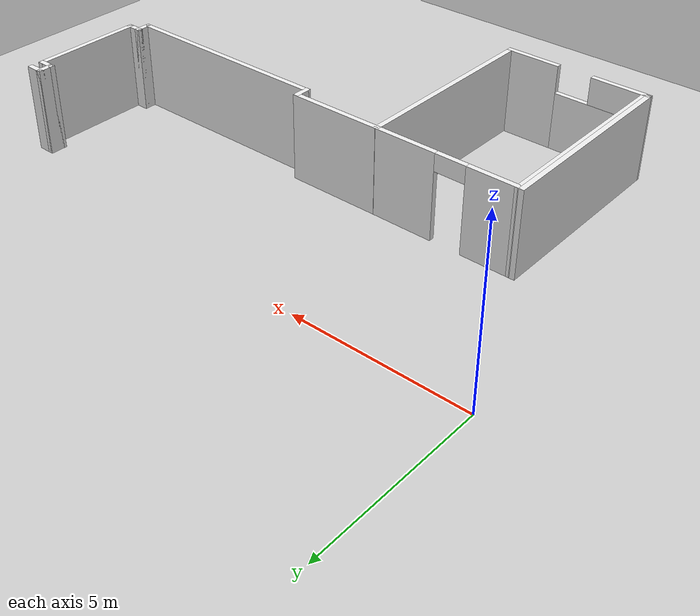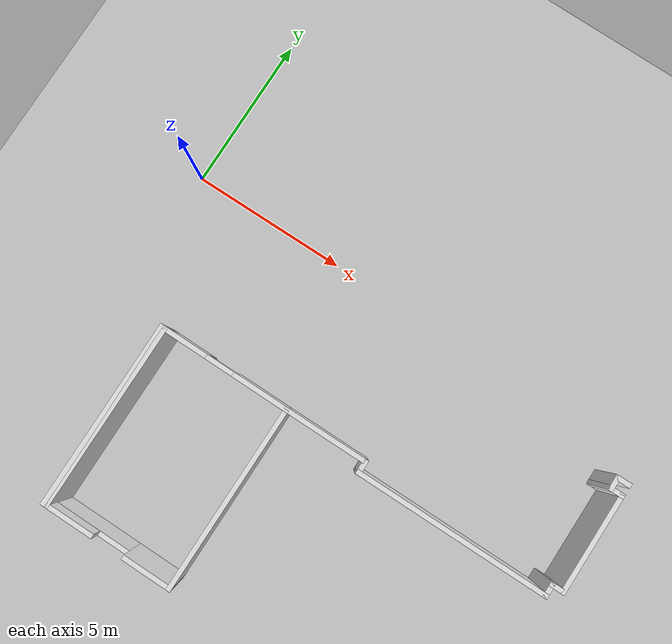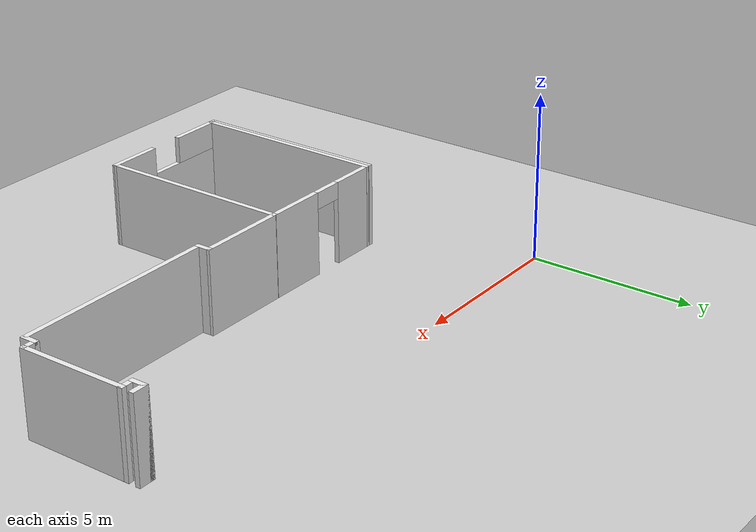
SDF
<sdf version="1.6">
 <world name="default">
  <model name="ground_plane">
   <static>1</static>
   <link name="link">
    <collision name="collision">
     <geometry><plane><normal>0 0 1</normal><size>100 100</size></plane></geometry>
     <surface><friction><ode><mu>100</mu><mu2>50</mu2></ode></friction></surface>
    </collision>
    <visual name="visual">
     <cast_shadows>0</cast_shadows>
     <geometry><plane><normal>0 0 1</normal><size>100 100</size></plane></geometry>
     <material>
      <script><uri>file://media/materials/scripts/gazebo.material</uri><name>Gazebo/Grey</name></script>
     </material>
    </visual>
   </link>
  </model>
  <model name="ucu_basic_frame.world">
   <link name="Wall_171">
    <pose>5.44548 -11.0107 0 0 -0 1.5685</pose>
    <visual name="Wall_171_Visual">
     <pose>0 0 1.25 0 -0 0</pose>
     <geometry><box><size>5.97284 0.15 2.5</size></box></geometry>
     <material>
      <script><uri>file://media/materials/scripts/gazebo.material</uri><name>Gazebo/White</name></script>
      <ambient>1 1 1 1</ambient>
      <diffuse>1 1 1 1</diffuse>
      <specular>0 0 0 1</specular>
      <emissive>0 0 0 1</emissive>
     </material>
     <meta><layer>0</layer></meta>
    </visual>
    <collision name="Wall_171_Collision">
     <pose>0 0 1.25 0 -0 0</pose>
     <geometry><box><size>5.97284 0.15 2.5</size></box></geometry>
     <surface>
      <friction>
       <ode><mu>1</mu><mu2>1</mu2><fdir1>0 0 0</fdir1><slip1>0</slip1><slip2>0</slip2></ode>
       <torsional>
        <coefficient>1</coefficient>
        <patch_radius>0</patch_radius>
        <surface_radius>0</surface_radius>
        <use_patch_radius>1</use_patch_radius>
        <ode><slip>0</slip></ode>
       </torsional>
      </friction>
      <bounce><restitution_coefficient>0</restitution_coefficient><threshold>1e+06</threshold></bounce>
      <contact>
       <collide_without_contact>0</collide_without_contact>
       <collide_without_contact_bitmask>1</collide_without_contact_bitmask>
       <collide_bitmask>1</collide_bitmask>
       <ode>
        <soft_cfm>0</soft_cfm>
        <soft_erp>0.2</soft_erp>
        <kp>1e+13</kp>
        <kd>1</kd>
        <max_vel>0.01</max_vel>
        <min_depth>0</min_depth>
       </ode>
       <bullet>
        <split_impulse>1</split_impulse>
        <split_impulse_penetration_threshold>-0.01</split_impulse_penetration_threshold>
        <soft_cfm>0</soft_cfm>
        <soft_erp>0.2</soft_erp>
        <kp>1e+13</kp>
        <kd>1</kd>
       </bullet>
      </contact>
     </surface>
    </collision>
   </link>
   <link name="Wall_172">
    <pose>6.76546 -8.09988 0 0 0 -0.000444</pose>
    <visual name="Wall_172_Visual">
     <pose>0 0 1.25 0 -0 0</pose>
     <geometry><box><size>2.77695 0.15 2.5</size></box></geometry>
     <material>
      <script><uri>file://media/materials/scripts/gazebo.material</uri><name>Gazebo/White</name></script>
      <ambient>1 1 1 1</ambient>
      <diffuse>1 1 1 1</diffuse>
      <specular>0 0 0 1</specular>
      <emissive>0 0 0 1</emissive>
     </material>
     <meta><layer>0</layer></meta>
    </visual>
    <collision name="Wall_172_Collision">
     <pose>0 0 1.25 0 -0 0</pose>
     <geometry><box><size>2.77695 0.15 2.5</size></box></geometry>
     <surface>
      <friction>
       <ode><mu>1</mu><mu2>1</mu2><fdir1>0 0 0</fdir1><slip1>0</slip1><slip2>0</slip2></ode>
       <torsional>
        <coefficient>1</coefficient>
        <patch_radius>0</patch_radius>
        <surface_radius>0</surface_radius>
        <use_patch_radius>1</use_patch_radius>
        <ode><slip>0</slip></ode>
       </torsional>
      </friction>
      <bounce><restitution_coefficient>0</restitution_coefficient><threshold>1e+06</threshold></bounce>
      <contact>
       <collide_without_contact>0</collide_without_contact>
       <collide_without_contact_bitmask>1</collide_without_contact_bitmask>
       <collide_bitmask>1</collide_bitmask>
       <ode>
        <soft_cfm>0</soft_cfm>
        <soft_erp>0.2</soft_erp>
        <kp>1e+13</kp>
        <kd>1</kd>
        <max_vel>0.01</max_vel>
        <min_depth>0</min_depth>
       </ode>
       <bullet>
        <split_impulse>1</split_impulse>
        <split_impulse_penetration_threshold>-0.01</split_impulse_penetration_threshold>
        <soft_cfm>0</soft_cfm>
        <soft_erp>0.2</soft_erp>
        <kp>1e+13</kp>
        <kd>1</kd>
       </bullet>
      </contact>
     </surface>
    </collision>
   </link>
   <link name="Wall_175">
    <pose>8.08184 -8.28385 0 0 0 -1.55318</pose>
    <visual name="Wall_175_Visual">
     <pose>0 0 1.25 0 -0 0</pose>
     <geometry><box><size>0.5 0.15 2.5</size></box></geometry>
     <material>
      <script><uri>file://media/materials/scripts/gazebo.material</uri><name>Gazebo/White</name></script>
      <ambient>1 1 1 1</ambient>
      <diffuse>1 1 1 1</diffuse>
      <specular>0 0 0 1</specular>
      <emissive>0 0 0 1</emissive>
     </material>
     <meta><layer>0</layer></meta>
    </visual>
    <collision name="Wall_175_Collision">
     <pose>0 0 1.25 0 -0 0</pose>
     <geometry><box><size>0.5 0.15 2.5</size></box></geometry>
     <surface>
      <friction>
       <ode><mu>1</mu><mu2>1</mu2><fdir1>0 0 0</fdir1><slip1>0</slip1><slip2>0</slip2></ode>
       <torsional>
        <coefficient>1</coefficient>
        <patch_radius>0</patch_radius>
        <surface_radius>0</surface_radius>
        <use_patch_radius>1</use_patch_radius>
        <ode><slip>0</slip></ode>
       </torsional>
      </friction>
      <bounce><restitution_coefficient>0</restitution_coefficient><threshold>1e+06</threshold></bounce>
      <contact>
       <collide_without_contact>0</collide_without_contact>
       <collide_without_contact_bitmask>1</collide_without_contact_bitmask>
       <collide_bitmask>1</collide_bitmask>
       <ode>
        <soft_cfm>0</soft_cfm>
        <soft_erp>0.2</soft_erp>
        <kp>1e+13</kp>
        <kd>1</kd>
        <max_vel>0.01</max_vel>
        <min_depth>0</min_depth>
       </ode>
       <bullet>
        <split_impulse>1</split_impulse>
        <split_impulse_penetration_threshold>-0.01</split_impulse_penetration_threshold>
        <soft_cfm>0</soft_cfm>
        <soft_erp>0.2</soft_erp>
        <kp>1e+13</kp>
        <kd>1</kd>
       </bullet>
      </contact>
     </surface>
    </collision>
   </link>
   <link name="Wall_181">
    <pose>3.39042 -8.08948 0 0 -0 3.13683</pose>
    <visual name="Wall_181_Visual_0">
     <pose>-1.19379 0 1.25 0 -0 0</pose>
     <geometry><box><size>1.8861 0.15 2.5</size></box></geometry>
     <material>
      <script><uri>file://media/materials/scripts/gazebo.material</uri><name>Gazebo/White</name></script>
      <ambient>1 1 1 1</ambient>
      <diffuse>1 1 1 1</diffuse>
      <specular>0 0 0 1</specular>
      <emissive>0 0 0 1</emissive>
     </material>
     <meta><layer>0</layer></meta>
    </visual>
    <visual name="Wall_181_Visual_1">
     <pose>1.39305 0 1.25 0 -0 0</pose>
     <geometry><box><size>1.48758 0.15 2.5</size></box></geometry>
     <material>
      <script><uri>file://media/materials/scripts/gazebo.material</uri><name>Gazebo/White</name></script>
      <ambient>1 1 1 1</ambient>
      <diffuse>1 1 1 1</diffuse>
      <specular>0 0 0 1</specular>
      <emissive>0 0 0 1</emissive>
     </material>
     <meta><layer>0</layer></meta>
    </visual>
    <visual name="Wall_181_Visual_2">
     <pose>0.19926 0 2.25 0 -0 0</pose>
     <geometry><box><size>0.9 0.15 0.5</size></box></geometry>
     <material>
      <script><uri>file://media/materials/scripts/gazebo.material</uri><name>Gazebo/White</name></script>
      <ambient>1 1 1 1</ambient>
      <diffuse>1 1 1 1</diffuse>
      <specular>0 0 0 1</specular>
      <emissive>0 0 0 1</emissive>
     </material>
     <meta><layer>0</layer></meta>
    </visual>
    <collision name="Wall_181_Collision_0">
     <pose>-1.19379 0 1.25 0 -0 0</pose>
     <geometry><box><size>1.8861 0.15 2.5</size></box></geometry>
     <surface>
      <friction>
       <ode><mu>1</mu><mu2>1</mu2><fdir1>0 0 0</fdir1><slip1>0</slip1><slip2>0</slip2></ode>
       <torsional>
        <coefficient>1</coefficient>
        <patch_radius>0</patch_radius>
        <surface_radius>0</surface_radius>
        <use_patch_radius>1</use_patch_radius>
        <ode><slip>0</slip></ode>
       </torsional>
      </friction>
      <bounce><restitution_coefficient>0</restitution_coefficient><threshold>1e+06</threshold></bounce>
      <contact>
       <collide_without_contact>0</collide_without_contact>
       <collide_without_contact_bitmask>1</collide_without_contact_bitmask>
       <collide_bitmask>1</collide_bitmask>
       <ode>
        <soft_cfm>0</soft_cfm>
        <soft_erp>0.2</soft_erp>
        <kp>1e+13</kp>
        <kd>1</kd>
        <max_vel>0.01</max_vel>
        <min_depth>0</min_depth>
       </ode>
       <bullet>
        <split_impulse>1</split_impulse>
        <split_impulse_penetration_threshold>-0.01</split_impulse_penetration_threshold>
        <soft_cfm>0</soft_cfm>
        <soft_erp>0.2</soft_erp>
        <kp>1e+13</kp>
        <kd>1</kd>
       </bullet>
      </contact>
     </surface>
    </collision>
    <collision name="Wall_181_Collision_1">
     <pose>1.39305 0 1.25 0 -0 0</pose>
     <geometry><box><size>1.48758 0.15 2.5</size></box></geometry>
     <surface>
      <friction>
       <ode><mu>1</mu><mu2>1</mu2><fdir1>0 0 0</fdir1><slip1>0</slip1><slip2>0</slip2></ode>
       <torsional>
        <coefficient>1</coefficient>
        <patch_radius>0</patch_radius>
        <surface_radius>0</surface_radius>
        <use_patch_radius>1</use_patch_radius>
        <ode><slip>0</slip></ode>
       </torsional>
      </friction>
      <bounce><restitution_coefficient>0</restitution_coefficient><threshold>1e+06</threshold></bounce>
      <contact>
       <collide_without_contact>0</collide_without_contact>
       <collide_without_contact_bitmask>1</collide_without_contact_bitmask>
       <collide_bitmask>1</collide_bitmask>
       <ode>
        <soft_cfm>0</soft_cfm>
        <soft_erp>0.2</soft_erp>
        <kp>1e+13</kp>
        <kd>1</kd>
        <max_vel>0.01</max_vel>
        <min_depth>0</min_depth>
       </ode>
       <bullet>
        <split_impulse>1</split_impulse>
        <split_impulse_penetration_threshold>-0.01</split_impulse_penetration_threshold>
        <soft_cfm>0</soft_cfm>
        <soft_erp>0.2</soft_erp>
        <kp>1e+13</kp>
        <kd>1</kd>
       </bullet>
      </contact>
     </surface>
    </collision>
    <collision name="Wall_181_Collision_2">
     <pose>0.19926 0 2.25 0 -0 0</pose>
     <geometry><box><size>0.9 0.15 0.5</size></box></geometry>
     <surface>
      <friction>
       <ode><mu>1</mu><mu2>1</mu2><fdir1>0 0 0</fdir1><slip1>0</slip1><slip2>0</slip2></ode>
       <torsional>
        <coefficient>1</coefficient>
        <patch_radius>0</patch_radius>
        <surface_radius>0</surface_radius>
        <use_patch_radius>1</use_patch_radius>
        <ode><slip>0</slip></ode>
       </torsional>
      </friction>
      <bounce><restitution_coefficient>0</restitution_coefficient><threshold>1e+06</threshold></bounce>
      <contact>
       <collide_without_contact>0</collide_without_contact>
       <collide_without_contact_bitmask>1</collide_without_contact_bitmask>
       <collide_bitmask>1</collide_bitmask>
       <ode>
        <soft_cfm>0</soft_cfm>
        <soft_erp>0.2</soft_erp>
        <kp>1e+13</kp>
        <kd>1</kd>
        <max_vel>0.01</max_vel>
        <min_depth>0</min_depth>
       </ode>
       <bullet>
        <split_impulse>1</split_impulse>
        <split_impulse_penetration_threshold>-0.01</split_impulse_penetration_threshold>
        <soft_cfm>0</soft_cfm>
        <soft_erp>0.2</soft_erp>
        <kp>1e+13</kp>
        <kd>1</kd>
       </bullet>
      </contact>
     </surface>
    </collision>
   </link>
   <link name="Wall_184">
    <pose>1.33252 -10.9956 0 0 0 -1.56948</pose>
    <visual name="Wall_184_Visual">
     <pose>0 0 1.25 0 -0 0</pose>
     <geometry><box><size>5.98199 0.15 2.5</size></box></geometry>
     <material>
      <script><uri>file://media/materials/scripts/gazebo.material</uri><name>Gazebo/White</name></script>
      <ambient>1 1 1 1</ambient>
      <diffuse>1 1 1 1</diffuse>
      <specular>0 0 0 1</specular>
      <emissive>0 0 0 1</emissive>
     </material>
     <meta><layer>0</layer></meta>
    </visual>
    <collision name="Wall_184_Collision">
     <pose>0 0 1.25 0 -0 0</pose>
     <geometry><box><size>5.98199 0.15 2.5</size></box></geometry>
     <surface>
      <friction>
       <ode><mu>1</mu><mu2>1</mu2><fdir1>0 0 0</fdir1><slip1>0</slip1><slip2>0</slip2></ode>
       <torsional>
        <coefficient>1</coefficient>
        <patch_radius>0</patch_radius>
        <surface_radius>0</surface_radius>
        <use_patch_radius>1</use_patch_radius>
        <ode><slip>0</slip></ode>
       </torsional>
      </friction>
      <bounce><restitution_coefficient>0</restitution_coefficient><threshold>1e+06</threshold></bounce>
      <contact>
       <collide_without_contact>0</collide_without_contact>
       <collide_without_contact_bitmask>1</collide_without_contact_bitmask>
       <collide_bitmask>1</collide_bitmask>
       <ode>
        <soft_cfm>0</soft_cfm>
        <soft_erp>0.2</soft_erp>
        <kp>1e+13</kp>
        <kd>1</kd>
        <max_vel>0.01</max_vel>
        <min_depth>0</min_depth>
       </ode>
       <bullet>
        <split_impulse>1</split_impulse>
        <split_impulse_penetration_threshold>-0.01</split_impulse_penetration_threshold>
        <soft_cfm>0</soft_cfm>
        <soft_erp>0.2</soft_erp>
        <kp>1e+13</kp>
        <kd>1</kd>
       </bullet>
      </contact>
     </surface>
    </collision>
   </link>
   <link name="Wall_185">
    <pose>1.28661 -13.9114 0 0 -0 3.13667</pose>
    <visual name="Wall_185_Visual">
     <pose>0 0 1.25 0 -0 0</pose>
     <geometry><box><size>0.249504 0.15 2.5</size></box></geometry>
     <material>
      <script><uri>file://media/materials/scripts/gazebo.material</uri><name>Gazebo/White</name></script>
      <ambient>1 1 1 1</ambient>
      <diffuse>1 1 1 1</diffuse>
      <specular>0 0 0 1</specular>
      <emissive>0 0 0 1</emissive>
     </material>
     <meta><layer>0</layer></meta>
    </visual>
    <collision name="Wall_185_Collision">
     <pose>0 0 1.25 0 -0 0</pose>
     <geometry><box><size>0.249504 0.15 2.5</size></box></geometry>
     <surface>
      <friction>
       <ode><mu>1</mu><mu2>1</mu2><fdir1>0 0 0</fdir1><slip1>0</slip1><slip2>0</slip2></ode>
       <torsional>
        <coefficient>1</coefficient>
        <patch_radius>0</patch_radius>
        <surface_radius>0</surface_radius>
        <use_patch_radius>1</use_patch_radius>
        <ode><slip>0</slip></ode>
       </torsional>
      </friction>
      <bounce><restitution_coefficient>0</restitution_coefficient><threshold>1e+06</threshold></bounce>
      <contact>
       <collide_without_contact>0</collide_without_contact>
       <collide_without_contact_bitmask>1</collide_without_contact_bitmask>
       <collide_bitmask>1</collide_bitmask>
       <ode>
        <soft_cfm>0</soft_cfm>
        <soft_erp>0.2</soft_erp>
        <kp>1e+13</kp>
        <kd>1</kd>
        <max_vel>0.01</max_vel>
        <min_depth>0</min_depth>
       </ode>
       <bullet>
        <split_impulse>1</split_impulse>
        <split_impulse_penetration_threshold>-0.01</split_impulse_penetration_threshold>
        <soft_cfm>0</soft_cfm>
        <soft_erp>0.2</soft_erp>
        <kp>1e+13</kp>
        <kd>1</kd>
       </bullet>
      </contact>
     </surface>
    </collision>
   </link>
   <link name="Wall_186">
    <pose>1.23028 -10.9951 0 0 -0 1.57305</pose>
    <visual name="Wall_186_Visual">
     <pose>0 0 1.25 0 -0 0</pose>
     <geometry><box><size>5.98236 0.15 2.5</size></box></geometry>
     <material>
      <script><uri>file://media/materials/scripts/gazebo.material</uri><name>Gazebo/White</name></script>
      <ambient>0 1 0 1</ambient>
      <diffuse>1 1 1 1</diffuse>
      <specular>0 0 0 1</specular>
      <emissive>0 0 0 1</emissive>
     </material>
     <meta><layer>0</layer></meta>
    </visual>
    <collision name="Wall_186_Collision">
     <pose>0 0 1.25 0 -0 0</pose>
     <geometry><box><size>5.98236 0.15 2.5</size></box></geometry>
     <surface>
      <friction>
       <ode><mu>1</mu><mu2>1</mu2><fdir1>0 0 0</fdir1><slip1>0</slip1><slip2>0</slip2></ode>
       <torsional>
        <coefficient>1</coefficient>
        <patch_radius>0</patch_radius>
        <surface_radius>0</surface_radius>
        <use_patch_radius>1</use_patch_radius>
        <ode><slip>0</slip></ode>
       </torsional>
      </friction>
      <bounce><restitution_coefficient>0</restitution_coefficient><threshold>1e+06</threshold></bounce>
      <contact>
       <collide_without_contact>0</collide_without_contact>
       <collide_without_contact_bitmask>1</collide_without_contact_bitmask>
       <collide_bitmask>1</collide_bitmask>
       <ode>
        <soft_cfm>0</soft_cfm>
        <soft_erp>0.2</soft_erp>
        <kp>1e+13</kp>
        <kd>1</kd>
        <max_vel>0.01</max_vel>
        <min_depth>0</min_depth>
       </ode>
       <bullet>
        <split_impulse>1</split_impulse>
        <split_impulse_penetration_threshold>-0.01</split_impulse_penetration_threshold>
        <soft_cfm>0</soft_cfm>
        <soft_erp>0.2</soft_erp>
        <kp>1e+13</kp>
        <kd>1</kd>
       </bullet>
      </contact>
     </surface>
    </collision>
   </link>
   <link name="Wall_191">
    <pose>3.38758 -13.9169 0 0 -0 3.13903</pose>
    <visual name="Wall_191_Visual_0">
     <pose>-1.31182 0 1.25 0 -0 0</pose>
     <geometry><box><size>1.62881 0.15 2.5</size></box></geometry>
     <material>
      <script><uri>file://media/materials/scripts/gazebo.material</uri><name>Gazebo/White</name></script>
      <ambient>1 1 1 1</ambient>
      <diffuse>1 1 1 1</diffuse>
      <specular>0 0 0 1</specular>
      <emissive>0 0 0 1</emissive>
     </material>
     <meta><layer>0</layer></meta>
    </visual>
    <visual name="Wall_191_Visual_1">
     <pose>0.814404 0 0.85 0 -0 0</pose>
     <geometry><box><size>2.62364 0.15 1.7</size></box></geometry>
     <material>
      <script><uri>file://media/materials/scripts/gazebo.material</uri><name>Gazebo/White</name></script>
      <ambient>1 1 1 1</ambient>
      <diffuse>1 1 1 1</diffuse>
      <specular>0 0 0 1</specular>
      <emissive>0 0 0 1</emissive>
     </material>
     <meta><layer>0</layer></meta>
    </visual>
    <visual name="Wall_191_Visual_2">
     <pose>1.3144 0 2.1 0 -0 0</pose>
     <geometry><box><size>1.62365 0.15 0.8</size></box></geometry>
     <material>
      <script><uri>file://media/materials/scripts/gazebo.material</uri><name>Gazebo/White</name></script>
      <ambient>1 1 1 1</ambient>
      <diffuse>1 1 1 1</diffuse>
      <specular>0 0 0 1</specular>
      <emissive>0 0 0 1</emissive>
     </material>
     <meta><layer>0</layer></meta>
    </visual>
    <collision name="Wall_191_Collision_1">
     <pose>0.814404 0 0.85 0 -0 0</pose>
     <geometry><box><size>2.62364 0.15 1.7</size></box></geometry>
     <surface>
      <friction>
       <ode><mu>1</mu><mu2>1</mu2><fdir1>0 0 0</fdir1><slip1>0</slip1><slip2>0</slip2></ode>
       <torsional>
        <coefficient>1</coefficient>
        <patch_radius>0</patch_radius>
        <surface_radius>0</surface_radius>
        <use_patch_radius>1</use_patch_radius>
        <ode><slip>0</slip></ode>
       </torsional>
      </friction>
      <bounce><restitution_coefficient>0</restitution_coefficient><threshold>1e+06</threshold></bounce>
      <contact>
       <collide_without_contact>0</collide_without_contact>
       <collide_without_contact_bitmask>1</collide_without_contact_bitmask>
       <collide_bitmask>1</collide_bitmask>
       <ode>
        <soft_cfm>0</soft_cfm>
        <soft_erp>0.2</soft_erp>
        <kp>1e+13</kp>
        <kd>1</kd>
        <max_vel>0.01</max_vel>
        <min_depth>0</min_depth>
       </ode>
       <bullet>
        <split_impulse>1</split_impulse>
        <split_impulse_penetration_threshold>-0.01</split_impulse_penetration_threshold>
        <soft_cfm>0</soft_cfm>
        <soft_erp>0.2</soft_erp>
        <kp>1e+13</kp>
        <kd>1</kd>
       </bullet>
      </contact>
     </surface>
    </collision>
    <collision name="Wall_191_Collision_0">
     <pose>-1.31182 0 1.25 0 -0 0</pose>
     <geometry><box><size>1.62881 0.15 2.5</size></box></geometry>
     <surface>
      <friction>
       <ode><mu>1</mu><mu2>1</mu2><fdir1>0 0 0</fdir1><slip1>0</slip1><slip2>0</slip2></ode>
       <torsional>
        <coefficient>1</coefficient>
        <patch_radius>0</patch_radius>
        <surface_radius>0</surface_radius>
        <use_patch_radius>1</use_patch_radius>
        <ode><slip>0</slip></ode>
       </torsional>
      </friction>
      <bounce><restitution_coefficient>0</restitution_coefficient><threshold>1e+06</threshold></bounce>
      <contact>
       <collide_without_contact>0</collide_without_contact>
       <collide_without_contact_bitmask>1</collide_without_contact_bitmask>
       <collide_bitmask>1</collide_bitmask>
       <ode>
        <soft_cfm>0</soft_cfm>
        <soft_erp>0.2</soft_erp>
        <kp>1e+13</kp>
        <kd>1</kd>
        <max_vel>0.01</max_vel>
        <min_depth>0</min_depth>
       </ode>
       <bullet>
        <split_impulse>1</split_impulse>
        <split_impulse_penetration_threshold>-0.01</split_impulse_penetration_threshold>
        <soft_cfm>0</soft_cfm>
        <soft_erp>0.2</soft_erp>
        <kp>1e+13</kp>
        <kd>1</kd>
       </bullet>
      </contact>
     </surface>
    </collision>
    <collision name="Wall_191_Collision_2">
     <pose>1.3144 0 2.1 0 -0 0</pose>
     <geometry><box><size>1.62365 0.15 0.8</size></box></geometry>
     <surface>
      <friction>
       <ode><mu>1</mu><mu2>1</mu2><fdir1>0 0 0</fdir1><slip1>0</slip1><slip2>0</slip2></ode>
       <torsional>
        <coefficient>1</coefficient>
        <patch_radius>0</patch_radius>
        <surface_radius>0</surface_radius>
        <use_patch_radius>1</use_patch_radius>
        <ode><slip>0</slip></ode>
       </torsional>
      </friction>
      <bounce><restitution_coefficient>0</restitution_coefficient><threshold>1e+06</threshold></bounce>
      <contact>
       <collide_without_contact>0</collide_without_contact>
       <collide_without_contact_bitmask>1</collide_without_contact_bitmask>
       <collide_bitmask>1</collide_bitmask>
       <ode>
        <soft_cfm>0</soft_cfm>
        <soft_erp>0.2</soft_erp>
        <kp>1e+13</kp>
        <kd>1</kd>
        <max_vel>0.01</max_vel>
        <min_depth>0</min_depth>
       </ode>
       <bullet>
        <split_impulse>1</split_impulse>
        <split_impulse_penetration_threshold>-0.01</split_impulse_penetration_threshold>
        <soft_cfm>0</soft_cfm>
        <soft_erp>0.2</soft_erp>
        <kp>1e+13</kp>
        <kd>1</kd>
       </bullet>
      </contact>
     </surface>
    </collision>
   </link>
   <link name="Wall_276">
    <pose>11.1349 -8.45041 0 0 -0 0</pose>
    <visual name="Wall_276_Visual">
     <pose>0 0 1.25 0 -0 0</pose>
     <geometry><box><size>6.25 0.15 2.5</size></box></geometry>
     <material>
      <script><uri>file://media/materials/scripts/gazebo.material</uri><name>Gazebo/White</name></script>
      <ambient>1 1 1 1</ambient>
      <diffuse>1 1 1 1</diffuse>
      <specular>0 0 0 1</specular>
      <emissive>0 0 0 1</emissive>
     </material>
     <meta><layer>0</layer></meta>
    </visual>
    <collision name="Wall_276_Collision">
     <pose>0 0 1.25 0 -0 0</pose>
     <geometry><box><size>6.25 0.15 2.5</size></box></geometry>
     <surface>
      <friction>
       <ode><mu>1</mu><mu2>1</mu2><fdir1>0 0 0</fdir1><slip1>0</slip1><slip2>0</slip2></ode>
       <torsional>
        <coefficient>1</coefficient>
        <patch_radius>0</patch_radius>
        <surface_radius>0</surface_radius>
        <use_patch_radius>1</use_patch_radius>
        <ode><slip>0</slip></ode>
       </torsional>
      </friction>
      <bounce><restitution_coefficient>0</restitution_coefficient><threshold>1e+06</threshold></bounce>
      <contact>
       <collide_without_contact>0</collide_without_contact>
       <collide_without_contact_bitmask>1</collide_without_contact_bitmask>
       <collide_bitmask>1</collide_bitmask>
       <ode>
        <soft_cfm>0</soft_cfm>
        <soft_erp>0.2</soft_erp>
        <kp>1e+13</kp>
        <kd>1</kd>
        <max_vel>0.01</max_vel>
        <min_depth>0</min_depth>
       </ode>
       <bullet>
        <split_impulse>1</split_impulse>
        <split_impulse_penetration_threshold>-0.01</split_impulse_penetration_threshold>
        <soft_cfm>0</soft_cfm>
        <soft_erp>0.2</soft_erp>
        <kp>1e+13</kp>
        <kd>1</kd>
       </bullet>
      </contact>
     </surface>
    </collision>
   </link>
   <link name="Wall_293">
    <pose>14.1849 -8.27541 0 0 -0 1.5708</pose>
    <visual name="Wall_293_Visual">
     <pose>0 0 1.25 0 -0 0</pose>
     <geometry><box><size>0.5 0.15 2.5</size></box></geometry>
     <material>
      <script><uri>file://media/materials/scripts/gazebo.material</uri><name>Gazebo/White</name></script>
      <ambient>1 1 1 1</ambient>
      <diffuse>1 1 1 1</diffuse>
      <specular>0 0 0 1</specular>
      <emissive>0 0 0 1</emissive>
     </material>
     <meta><layer>0</layer></meta>
    </visual>
    <collision name="Wall_293_Collision">
     <pose>0 0 1.25 0 -0 0</pose>
     <geometry><box><size>0.5 0.15 2.5</size></box></geometry>
     <surface>
      <friction>
       <ode><mu>1</mu><mu2>1</mu2><fdir1>0 0 0</fdir1><slip1>0</slip1><slip2>0</slip2></ode>
       <torsional>
        <coefficient>1</coefficient>
        <patch_radius>0</patch_radius>
        <surface_radius>0</surface_radius>
        <use_patch_radius>1</use_patch_radius>
        <ode><slip>0</slip></ode>
       </torsional>
      </friction>
      <bounce><restitution_coefficient>0</restitution_coefficient><threshold>1e+06</threshold></bounce>
      <contact>
       <collide_without_contact>0</collide_without_contact>
       <collide_without_contact_bitmask>1</collide_without_contact_bitmask>
       <collide_bitmask>1</collide_bitmask>
       <ode>
        <soft_cfm>0</soft_cfm>
        <soft_erp>0.2</soft_erp>
        <kp>1e+13</kp>
        <kd>1</kd>
        <max_vel>0.01</max_vel>
        <min_depth>0</min_depth>
       </ode>
       <bullet>
        <split_impulse>1</split_impulse>
        <split_impulse_penetration_threshold>-0.01</split_impulse_penetration_threshold>
        <soft_cfm>0</soft_cfm>
        <soft_erp>0.2</soft_erp>
        <kp>1e+13</kp>
        <kd>1</kd>
       </bullet>
      </contact>
     </surface>
    </collision>
   </link>
   <link name="Wall_294">
    <pose>14.3599 -8.10041 0 0 -0 0</pose>
    <visual name="Wall_294_Visual">
     <pose>0 0 1.25 0 -0 0</pose>
     <geometry><box><size>0.5 0.15 2.5</size></box></geometry>
     <material>
      <script><uri>file://media/materials/scripts/gazebo.material</uri><name>Gazebo/White</name></script>
      <ambient>1 1 1 1</ambient>
      <diffuse>1 1 1 1</diffuse>
      <specular>0 0 0 1</specular>
      <emissive>0 0 0 1</emissive>
     </material>
     <meta><layer>0</layer></meta>
    </visual>
    <collision name="Wall_294_Collision">
     <pose>0 0 1.25 0 -0 0</pose>
     <geometry><box><size>0.5 0.15 2.5</size></box></geometry>
     <surface>
      <friction>
       <ode><mu>1</mu><mu2>1</mu2><fdir1>0 0 0</fdir1><slip1>0</slip1><slip2>0</slip2></ode>
       <torsional>
        <coefficient>1</coefficient>
        <patch_radius>0</patch_radius>
        <surface_radius>0</surface_radius>
        <use_patch_radius>1</use_patch_radius>
        <ode><slip>0</slip></ode>
       </torsional>
      </friction>
      <bounce><restitution_coefficient>0</restitution_coefficient><threshold>1e+06</threshold></bounce>
      <contact>
       <collide_without_contact>0</collide_without_contact>
       <collide_without_contact_bitmask>1</collide_without_contact_bitmask>
       <collide_bitmask>1</collide_bitmask>
       <ode>
        <soft_cfm>0</soft_cfm>
        <soft_erp>0.2</soft_erp>
        <kp>1e+13</kp>
        <kd>1</kd>
        <max_vel>0.01</max_vel>
        <min_depth>0</min_depth>
       </ode>
       <bullet>
        <split_impulse>1</split_impulse>
        <split_impulse_penetration_threshold>-0.01</split_impulse_penetration_threshold>
        <soft_cfm>0</soft_cfm>
        <soft_erp>0.2</soft_erp>
        <kp>1e+13</kp>
        <kd>1</kd>
       </bullet>
      </contact>
     </surface>
    </collision>
   </link>
   <link name="Wall_296">
    <pose>14.5349 -6.55041 0 0 -0 1.5708</pose>
    <visual name="Wall_296_Visual">
     <pose>0 0 1.25 0 -0 0</pose>
     <geometry><box><size>3.25 0.15 2.5</size></box></geometry>
     <material>
      <script><uri>file://media/materials/scripts/gazebo.material</uri><name>Gazebo/White</name></script>
      <ambient>1 1 1 1</ambient>
      <diffuse>1 1 1 1</diffuse>
      <specular>0 0 0 1</specular>
      <emissive>0 0 0 1</emissive>
     </material>
     <meta><layer>0</layer></meta>
    </visual>
    <collision name="Wall_296_Collision">
     <pose>0 0 1.25 0 -0 0</pose>
     <geometry><box><size>3.25 0.15 2.5</size></box></geometry>
     <surface>
      <friction>
       <ode><mu>1</mu><mu2>1</mu2><fdir1>0 0 0</fdir1><slip1>0</slip1><slip2>0</slip2></ode>
       <torsional>
        <coefficient>1</coefficient>
        <patch_radius>0</patch_radius>
        <surface_radius>0</surface_radius>
        <use_patch_radius>1</use_patch_radius>
        <ode><slip>0</slip></ode>
       </torsional>
      </friction>
      <bounce><restitution_coefficient>0</restitution_coefficient><threshold>1e+06</threshold></bounce>
      <contact>
       <collide_without_contact>0</collide_without_contact>
       <collide_without_contact_bitmask>1</collide_without_contact_bitmask>
       <collide_bitmask>1</collide_bitmask>
       <ode>
        <soft_cfm>0</soft_cfm>
        <soft_erp>0.2</soft_erp>
        <kp>1e+13</kp>
        <kd>1</kd>
        <max_vel>0.01</max_vel>
        <min_depth>0</min_depth>
       </ode>
       <bullet>
        <split_impulse>1</split_impulse>
        <split_impulse_penetration_threshold>-0.01</split_impulse_penetration_threshold>
        <soft_cfm>0</soft_cfm>
        <soft_erp>0.2</soft_erp>
        <kp>1e+13</kp>
        <kd>1</kd>
       </bullet>
      </contact>
     </surface>
    </collision>
   </link>
   <link name="Wall_297">
    <pose>14.3599 -5.00041 0 0 -0 3.14159</pose>
    <visual name="Wall_297_Visual">
     <pose>0 0 1.25 0 -0 0</pose>
     <geometry><box><size>0.5 0.15 2.5</size></box></geometry>
     <material>
      <script><uri>file://media/materials/scripts/gazebo.material</uri><name>Gazebo/White</name></script>
      <ambient>1 1 1 1</ambient>
      <diffuse>1 1 1 1</diffuse>
      <specular>0 0 0 1</specular>
      <emissive>0 0 0 1</emissive>
     </material>
     <meta><layer>0</layer></meta>
    </visual>
    <collision name="Wall_297_Collision">
     <pose>0 0 1.25 0 -0 0</pose>
     <geometry><box><size>0.5 0.15 2.5</size></box></geometry>
     <surface>
      <friction>
       <ode><mu>1</mu><mu2>1</mu2><fdir1>0 0 0</fdir1><slip1>0</slip1><slip2>0</slip2></ode>
       <torsional>
        <coefficient>1</coefficient>
        <patch_radius>0</patch_radius>
        <surface_radius>0</surface_radius>
        <use_patch_radius>1</use_patch_radius>
        <ode><slip>0</slip></ode>
       </torsional>
      </friction>
      <bounce><restitution_coefficient>0</restitution_coefficient><threshold>1e+06</threshold></bounce>
      <contact>
       <collide_without_contact>0</collide_without_contact>
       <collide_without_contact_bitmask>1</collide_without_contact_bitmask>
       <collide_bitmask>1</collide_bitmask>
       <ode>
        <soft_cfm>0</soft_cfm>
        <soft_erp>0.2</soft_erp>
        <kp>1e+13</kp>
        <kd>1</kd>
        <max_vel>0.01</max_vel>
        <min_depth>0</min_depth>
       </ode>
       <bullet>
        <split_impulse>1</split_impulse>
        <split_impulse_penetration_threshold>-0.01</split_impulse_penetration_threshold>
        <soft_cfm>0</soft_cfm>
        <soft_erp>0.2</soft_erp>
        <kp>1e+13</kp>
        <kd>1</kd>
       </bullet>
      </contact>
     </surface>
    </collision>
   </link>
   <link name="Wall_298">
    <pose>14.1849 -4.82541 0 0 -0 1.5708</pose>
    <visual name="Wall_298_Visual">
     <pose>0 0 1.25 0 -0 0</pose>
     <geometry><box><size>0.5 0.15 2.5</size></box></geometry>
     <material>
      <script><uri>file://media/materials/scripts/gazebo.material</uri><name>Gazebo/White</name></script>
      <ambient>1 1 1 1</ambient>
      <diffuse>1 1 1 1</diffuse>
      <specular>0 0 0 1</specular>
      <emissive>0 0 0 1</emissive>
     </material>
     <meta><layer>0</layer></meta>
    </visual>
    <collision name="Wall_298_Collision">
     <pose>0 0 1.25 0 -0 0</pose>
     <geometry><box><size>0.5 0.15 2.5</size></box></geometry>
     <surface>
      <friction>
       <ode><mu>1</mu><mu2>1</mu2><fdir1>0 0 0</fdir1><slip1>0</slip1><slip2>0</slip2></ode>
       <torsional>
        <coefficient>1</coefficient>
        <patch_radius>0</patch_radius>
        <surface_radius>0</surface_radius>
        <use_patch_radius>1</use_patch_radius>
        <ode><slip>0</slip></ode>
       </torsional>
      </friction>
      <bounce><restitution_coefficient>0</restitution_coefficient><threshold>1e+06</threshold></bounce>
      <contact>
       <collide_without_contact>0</collide_without_contact>
       <collide_without_contact_bitmask>1</collide_without_contact_bitmask>
       <collide_bitmask>1</collide_bitmask>
       <ode>
        <soft_cfm>0</soft_cfm>
        <soft_erp>0.2</soft_erp>
        <kp>1e+13</kp>
        <kd>1</kd>
        <max_vel>0.01</max_vel>
        <min_depth>0</min_depth>
       </ode>
       <bullet>
        <split_impulse>1</split_impulse>
        <split_impulse_penetration_threshold>-0.01</split_impulse_penetration_threshold>
        <soft_cfm>0</soft_cfm>
        <soft_erp>0.2</soft_erp>
        <kp>1e+13</kp>
        <kd>1</kd>
       </bullet>
      </contact>
     </surface>
    </collision>
   </link>
   <link name="Wall_299">
    <pose>14.3599 -4.65041 0 0 -0 0</pose>
    <visual name="Wall_299_Visual">
     <pose>0 0 1.25 0 -0 0</pose>
     <geometry><box><size>0.5 0.15 2.5</size></box></geometry>
     <material>
      <script><uri>file://media/materials/scripts/gazebo.material</uri><name>Gazebo/White</name></script>
      <ambient>1 1 1 1</ambient>
      <diffuse>1 1 1 1</diffuse>
      <specular>0 0 0 1</specular>
      <emissive>0 0 0 1</emissive>
     </material>
     <meta><layer>0</layer></meta>
    </visual>
    <collision name="Wall_299_Collision">
     <pose>0 0 1.25 0 -0 0</pose>
     <geometry><box><size>0.5 0.15 2.5</size></box></geometry>
     <surface>
      <friction>
       <ode><mu>1</mu><mu2>1</mu2><fdir1>0 0 0</fdir1><slip1>0</slip1><slip2>0</slip2></ode>
       <torsional>
        <coefficient>1</coefficient>
        <patch_radius>0</patch_radius>
        <surface_radius>0</surface_radius>
        <use_patch_radius>1</use_patch_radius>
        <ode><slip>0</slip></ode>
       </torsional>
      </friction>
      <bounce><restitution_coefficient>0</restitution_coefficient><threshold>1e+06</threshold></bounce>
      <contact>
       <collide_without_contact>0</collide_without_contact>
       <collide_without_contact_bitmask>1</collide_without_contact_bitmask>
       <collide_bitmask>1</collide_bitmask>
       <ode>
        <soft_cfm>0</soft_cfm>
        <soft_erp>0.2</soft_erp>
        <kp>1e+13</kp>
        <kd>1</kd>
        <max_vel>0.01</max_vel>
        <min_depth>0</min_depth>
       </ode>
       <bullet>
        <split_impulse>1</split_impulse>
        <split_impulse_penetration_threshold>-0.01</split_impulse_penetration_threshold>
        <soft_cfm>0</soft_cfm>
        <soft_erp>0.2</soft_erp>
        <kp>1e+13</kp>
        <kd>1</kd>
       </bullet>
      </contact>
     </surface>
    </collision>
   </link>
   <static>1</static>
   <pose>0.7577 3.6363 0 0 -0 0</pose>
  </model>
 </world>
</sdf>
